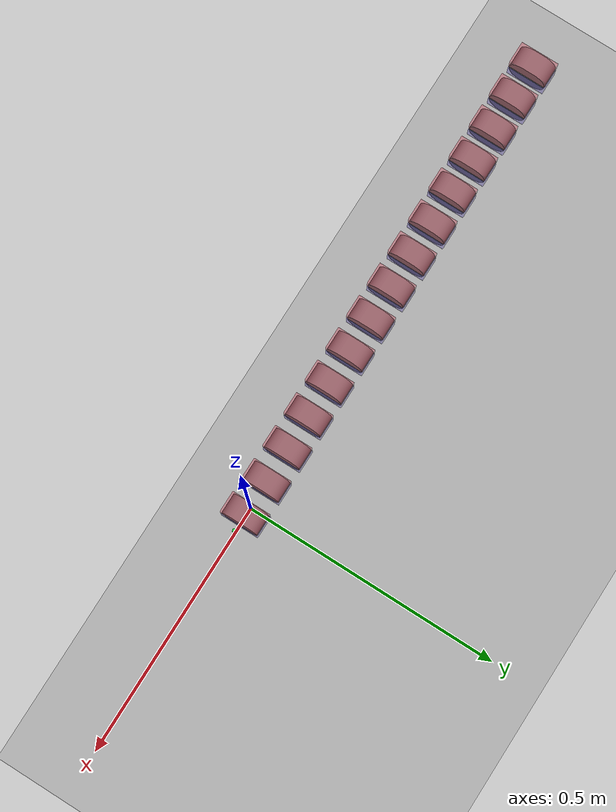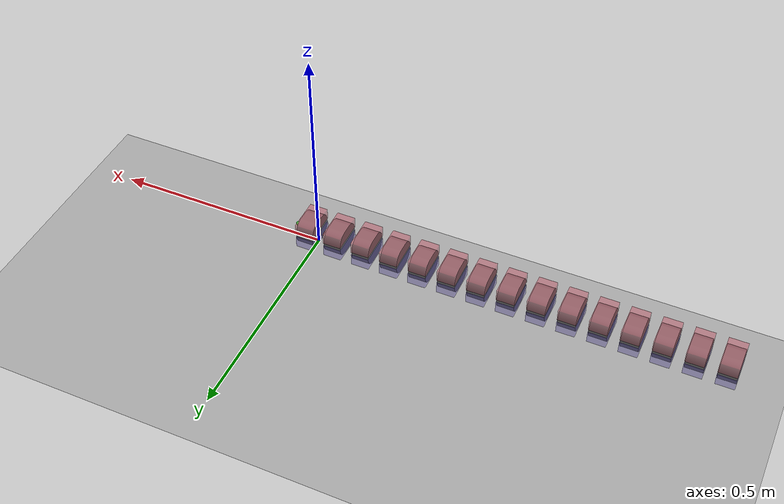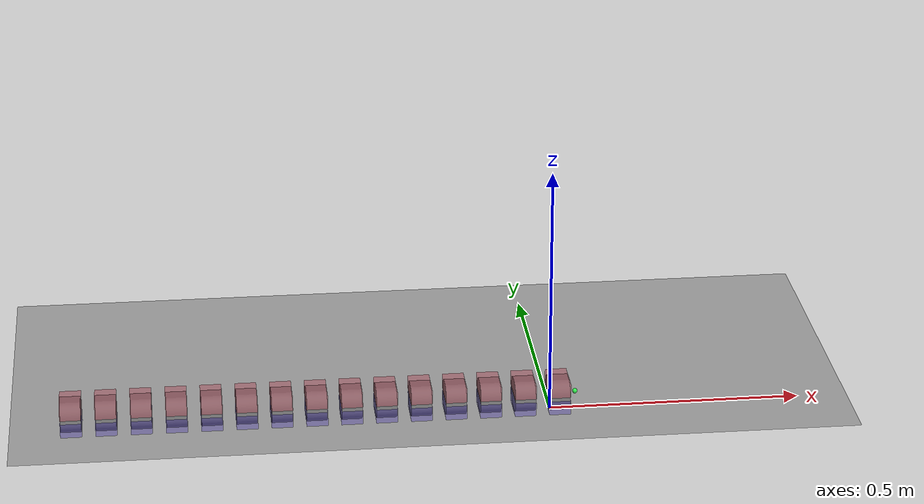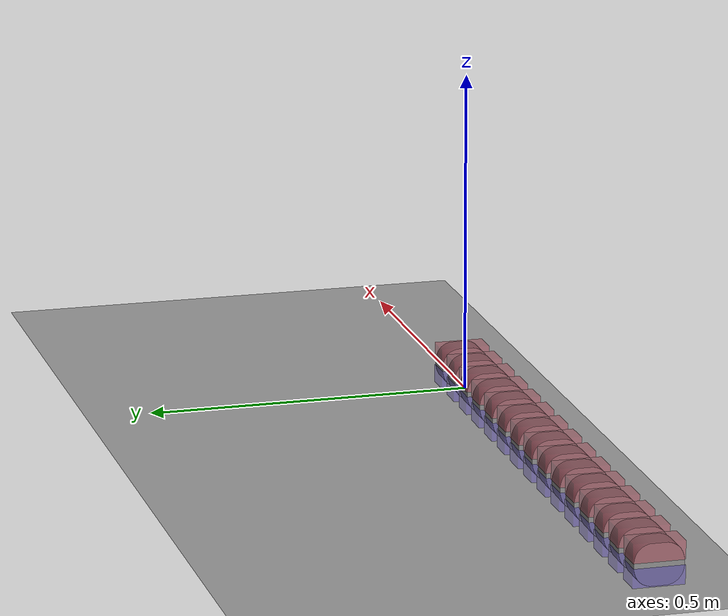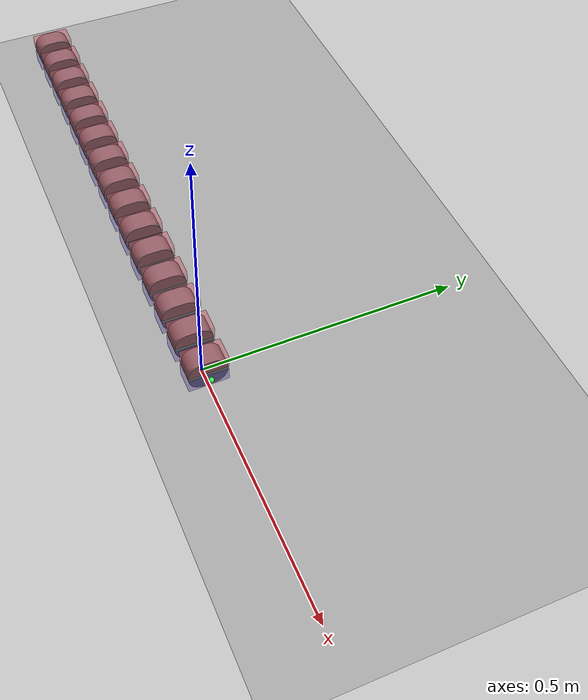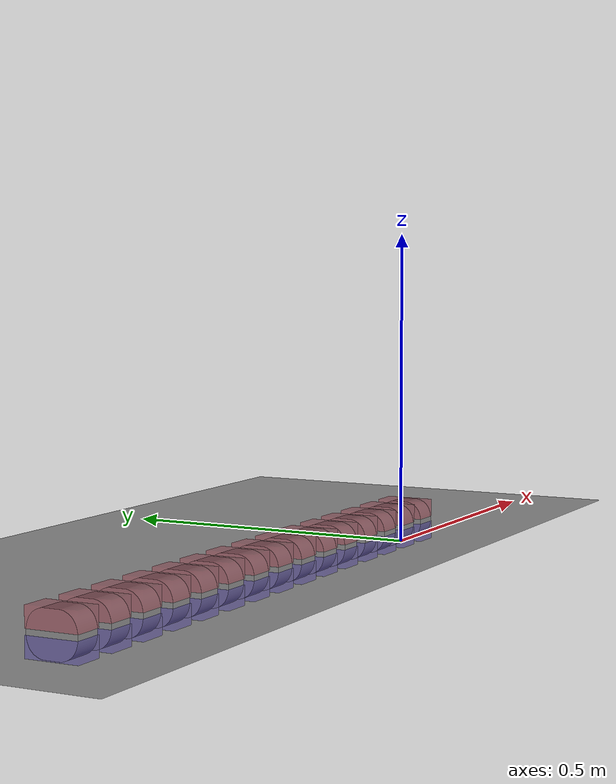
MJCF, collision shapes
<mujoco model="Horcrux v2 n14 with flat plane">
    <include file="horcrux_n14.xml"/>
    <option timestep="0.005"/>

    <asset>
        <texture type="skybox" builtin="gradient" width="512" height="512" rgb1=".4 .6 .8" rgb2="0 0 0"/>
        <texture name="texgeom" type="cube" builtin="flat" mark="cross" width="128" height="128"
                 rgb1="0.6 0.6 0.6" rgb2="0.6 0.6 0.6" markrgb="1 1 1"/>
        <texture name="texplane" type="2d" builtin="checker" rgb1=".55 .55 .55" rgb2=".75 .75 .75"
                 width="512" height="512"/>
        <material name="MatPlane" reflectance="0.0" texture="texplane" texrepeat="1 1" texuniform="true"
                  rgba="1 1 1 1"/>
        <material name="capsule" texture="texgeom" texuniform="true" rgba=".4 .9 .6 1" />
        <material name="ellipsoid" texture="texgeom" texuniform="true" rgba=".4 .6 .9 1" />
        <material name="box" texture="texgeom" texuniform="true" rgba=".4 .9 .9 1" />
        <material name="cylinder" texture="texgeom" texuniform="true" rgba=".8 .6 .8 1" />
        <material name="sphere" texture="texgeom" texuniform="true" rgba=".9 .1 .1 1" />
    </asset>

<worldbody>
    <geom name="floor" type="plane" size="30 30 .5" priority="2" friction="0.65 0.015 0.01" material="MatPlane"/>
</worldbody>

</mujoco>

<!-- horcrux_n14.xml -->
<mujoco model="Horcrux v2 body n14">
    <!-- AUTO-GENERATED by generate_scalable_mjcf.py (n=14 joints). DO NOT EDIT — regenerate instead. Source: resources/horcrux_p.xml -->
    <asset>
        <mesh name="link_collision" file="../resources/assets/link_collision_mesh.STL" />
        <material name="black_medium_gloss_plastic" specular="1.0" shininess="0.099901085" rgba="0.101961 0.101961 0.101961 1.000000" />
        <material name="black_spray_paint" specular="1.0" shininess="0.001136835" rgba="0.058824 0.058824 0.058824 1.000000" />
        <material name="brushed_nickel" specular="1.0" shininess="0.006954886" rgba="1.000000 0.960784 0.890196 1.000000" />
        <material name="color" specular="1.0" shininess="0.005212761999999999" rgba="0.000000 0.368627 0.094118 1.000000" />
        <material name="color-2" specular="1.0" shininess="0.005212761999999999" rgba="1.000000 1.000000 1.000000 1.000000" />
        <material name="color-3" specular="1.0" shininess="0.005212761999999999" rgba="0.250980 0.250980 0.250980 1.000000" />
        <material name="color-4" specular="1.0" shininess="0.005212761999999999" rgba="0.870588 0.709804 0.498039 1.000000" />
        <material name="color-5" specular="1.0" shininess="0.005212761999999999" rgba="0.749020 0.749020 0.749020 1.000000" />
        <material name="color-6" specular="1.0" shininess="0.005212761999999999" rgba="0.470588 0.431373 0.274510 1.000000" />
        <material name="color-7" specular="1.0" shininess="0.005212761999999999" rgba="0.247059 0.247059 0.247059 1.000000" />
        <material name="color-8" specular="1.0" shininess="0.005212761999999999" rgba="0.929412 0.807843 0.764706 1.000000" />
        <material name="color-9" specular="1.0" shininess="0.005212761999999999" rgba="0.960784 0.960784 0.964706 1.000000" />
        <material name="frosted_plastic" specular="1.0" shininess="0.002559057" rgba="0.576471 0.929412 1.000000 1.000000" />
        <material name="frosted_plastic-2" specular="1.0" shininess="0.002559057" rgba="0.576471 0.929412 1.000000 1.000000" />
        <material name="frosted_plastic-3" specular="1.0" shininess="0.002559057" rgba="0.576471 0.929412 1.000000 1.000000" />
        <material name="light_grey_low_gloss_plastic" specular="1.0" shininess="0.001357886" rgba="0.498039 0.498039 0.498039 1.000000" />
        <material name="matte_rubber" specular="1.0" shininess="0.0012430000000000002" rgba="0.094118 0.078431 0.078431 1.000000" />
        <material name="satin_finish_aluminum" specular="1.0" shininess="0.003414631" rgba="0.866667 0.909804 1.000000 1.000000" />
        <material name="satin_finish_aluminum_(Cosmetic_Thread)" specular="1.0" shininess="0.003414631" rgba="0.866667 0.909804 1.000000 1.000000" />
        <mesh file="../resources/assets/head_0.obj" />
        <mesh file="../resources/assets/head_1.obj" />
        <mesh file="../resources/assets/head_2.obj" />
        <mesh file="../resources/assets/head_3.obj" />
        <mesh file="../resources/assets/head_4.obj" />
        <mesh file="../resources/assets/head_5.obj" />
        <mesh file="../resources/assets/head_6.obj" />
        <mesh file="../resources/assets/head_7.obj" />
        <mesh file="../resources/assets/head_8.obj" />
        <mesh file="../resources/assets/head_9.obj" />
        <mesh file="../resources/assets/head_10.obj" />
        <mesh file="../resources/assets/head_11.obj" />
        <mesh file="../resources/assets/head_12.obj" />
        <mesh file="../resources/assets/head_13.obj" />
        <mesh file="../resources/assets/head_14.obj" />
        <mesh file="../resources/assets/head_15.obj" />
        <mesh file="../resources/assets/head_16.obj" />
        <mesh file="../resources/assets/head_17.obj" />
        <mesh file="../resources/assets/head_18.obj" />
        <material name="v-color" specular="1.0" shininess="0.005212761999999999" rgba="0.247059 0.247059 0.247059 1.000000" />
        <material name="v-color-10" specular="1.0" shininess="0.005212761999999999" rgba="0.749020 0.749020 0.749020 1.000000" />
        <material name="v-color-2" specular="1.0" shininess="0.005212761999999999" rgba="0.929412 0.807843 0.764706 1.000000" />
        <material name="v-color-3" specular="1.0" shininess="0.005212761999999999" rgba="0.960784 0.960784 0.964706 1.000000" />
        <material name="v-color-4" specular="1.0" shininess="0.005212761999999999" rgba="0.117647 0.294118 0.031373 1.000000" />
        <material name="v-color-5" specular="1.0" shininess="0.005212761999999999" rgba="0.470588 0.431373 0.274510 1.000000" />
        <material name="v-color-7" specular="1.0" shininess="0.005212761999999999" rgba="1.000000 1.000000 1.000000 1.000000" />
        <material name="v-color-8" specular="1.0" shininess="0.005212761999999999" rgba="0.250980 0.250980 0.250980 1.000000" />
        <material name="v-color-9" specular="1.0" shininess="0.005212761999999999" rgba="0.870588 0.709804 0.498039 1.000000" />
        <material name="glossy_rubber" specular="1.0" shininess="0.005212761999999999" rgba="0.298039 0.298039 0.298039 1.000000" />
        <mesh file="../resources/assets/v-link_0.obj" />
        <mesh file="../resources/assets/v-link_1.obj" />
        <mesh file="../resources/assets/v-link_2.obj" />
        <mesh file="../resources/assets/v-link_3.obj" />
        <mesh file="../resources/assets/v-link_4.obj" />
        <mesh file="../resources/assets/v-link_5.obj" />
        <mesh file="../resources/assets/v-link_6.obj" />
        <mesh file="../resources/assets/v-link_7.obj" />
        <mesh file="../resources/assets/v-link_8.obj" />
        <mesh file="../resources/assets/v-link_9.obj" />
        <mesh file="../resources/assets/v-link_10.obj" />
        <mesh file="../resources/assets/v-link_11.obj" />
        <mesh file="../resources/assets/v-link_12.obj" />
        <mesh file="../resources/assets/v-link_13.obj" />
        <mesh file="../resources/assets/v-link_14.obj" />
        <mesh file="../resources/assets/v-link_15.obj" />
        <mesh file="../resources/assets/v-link_16.obj" />
        <mesh file="../resources/assets/v-link_17.obj" />
        <mesh file="../resources/assets/v-link_18.obj" />
        <material name="black_medium_gloss_plastic.001" specular="1.0" shininess="0.099901085" rgba="0.101961 0.101961 0.101961 1.000000" />
        <material name="black_spray_paint.001" specular="1.0" shininess="0.001136835" rgba="0.058824 0.058824 0.058824 1.000000" />
        <material name="brushed_nickel.001" specular="1.0" shininess="0.006954886" rgba="1.000000 0.960784 0.890196 1.000000" />
        <material name="color-2.001" specular="1.0" shininess="0.005212761999999999" rgba="1.000000 1.000000 1.000000 1.000000" />
        <material name="color-3.001" specular="1.0" shininess="0.005212761999999999" rgba="0.250980 0.250980 0.250980 1.000000" />
        <material name="color-4.001" specular="1.0" shininess="0.005212761999999999" rgba="0.870588 0.709804 0.498039 1.000000" />
        <material name="color-5.001" specular="1.0" shininess="0.005212761999999999" rgba="0.749020 0.749020 0.749020 1.000000" />
        <material name="color-6.001" specular="1.0" shininess="0.005212761999999999" rgba="0.470588 0.431373 0.274510 1.000000" />
        <material name="color-7.001" specular="1.0" shininess="0.005212761999999999" rgba="0.247059 0.247059 0.247059 1.000000" />
        <material name="color-8.001" specular="1.0" shininess="0.005212761999999999" rgba="0.929412 0.807843 0.764706 1.000000" />
        <material name="color-9.001" specular="1.0" shininess="0.005212761999999999" rgba="0.960784 0.960784 0.964706 1.000000" />
        <material name="color.001" specular="1.0" shininess="0.005212761999999999" rgba="0.117647 0.294118 0.031373 1.000000" />
        <material name="frosted_plastic-2.001" specular="1.0" shininess="0.002559057" rgba="0.576471 0.929412 1.000000 1.000000" />
        <material name="frosted_plastic-3.001" specular="1.0" shininess="0.002559057" rgba="0.576471 0.929412 1.000000 1.000000" />
        <material name="frosted_plastic.001" specular="1.0" shininess="0.002559057" rgba="0.576471 0.929412 1.000000 1.000000" />
        <material name="glossy_rubber.001" specular="1.0" shininess="0.005212761999999999" rgba="0.298039 0.298039 0.298039 1.000000" />
        <material name="light_grey_low_gloss_plastic.001" specular="1.0" shininess="0.001357886" rgba="0.498039 0.498039 0.498039 1.000000" />
        <material name="satin_finish_aluminum.001" specular="1.0" shininess="0.003414631" rgba="0.866667 0.909804 1.000000 1.000000" />
        <material name="satin_finish_aluminum_(Cosmetic_Thread).001" specular="1.0" shininess="0.003414631" rgba="0.866667 0.909804 1.000000 1.000000" />
        <mesh file="../resources/assets/h-link_0.obj" />
        <mesh file="../resources/assets/h-link_1.obj" />
        <mesh file="../resources/assets/h-link_2.obj" />
        <mesh file="../resources/assets/h-link_3.obj" />
        <mesh file="../resources/assets/h-link_4.obj" />
        <mesh file="../resources/assets/h-link_5.obj" />
        <mesh file="../resources/assets/h-link_6.obj" />
        <mesh file="../resources/assets/h-link_7.obj" />
        <mesh file="../resources/assets/h-link_8.obj" />
        <mesh file="../resources/assets/h-link_9.obj" />
        <mesh file="../resources/assets/h-link_10.obj" />
        <mesh file="../resources/assets/h-link_11.obj" />
        <mesh file="../resources/assets/h-link_12.obj" />
        <mesh file="../resources/assets/h-link_13.obj" />
        <mesh file="../resources/assets/h-link_14.obj" />
        <mesh file="../resources/assets/h-link_15.obj" />
        <mesh file="../resources/assets/h-link_16.obj" />
        <mesh file="../resources/assets/h-link_17.obj" />
        <mesh file="../resources/assets/h-link_18.obj" />
    </asset>
    <default>
        <motor ctrlrange="-3 3" ctrllimited="true" />
        <default class="joint_defaults">
            <joint type="hinge" pos="0.0685 0 0" limited="true" range="-45 45" damping="0.13" armature="0.01" />
        </default>
        <default class="collision-mesh">
            <geom group="3" type="mesh" mesh="link_collision" mass="0.165" condim="4" rgba="0.5 0.5 0.5 0.1" priority="1" friction="0.7 0.015 0.001" euler="90 90 0" />
        </default>
        <default class="visual">
            <geom group="2" type="mesh" mass="0" contype="0" conaffinity="0" />
        </default>
        <default class="collision">
            <geom group="3" type="mesh" />
        </default>
    </default>
    <visual>
        <map force="0.1" zfar="30" />
        <rgba haze="0.15 0.25 0.35 1" />
        <quality shadowsize="4096" />
        <global offwidth="1280" offheight="1280" />
    </visual>
    <worldbody>
        <body>
            <camera name="ceiling" mode="fixed" fovy="48" pos="-0.5 0 3.5" euler="0 0 0" />
        </body>
        <body name="link1" pos="0 0 0.035" euler="0 0 0">
            <freejoint name="root" />
            <site name="s_tool" pos="0.05 0 0.0" euler="0 0 0" rgba="0.2 0.9 0.3 1" />
            <site name="s_link1_top" type="box" size="0.021 0.038 0.014" pos="0.016 0 0.018" rgba="0.8 0.1 0.2 0.3" />
            <site name="s_link1_bot" type="box" size="0.021 0.038 0.014" pos="0.016 0 -0.018" rgba="0.2 0.1 0.8 0.3" />
            <geom name="collision-link1" class="collision-mesh" />
            <geom mesh="head_0" pos="0 0 -0.03125" euler="0 90 90" material="matte_rubber" class="visual" />
            <geom mesh="head_1" pos="0 0 -0.03125" euler="0 90 90" material="color-9" class="visual" />
            <geom mesh="head_2" pos="0 0 -0.03125" euler="0 90 90" material="color-8" class="visual" />
            <geom mesh="head_3" pos="0 0 -0.03125" euler="0 90 90" material="color-7" class="visual" />
            <geom mesh="head_4" pos="0 0 -0.03125" euler="0 90 90" material="color-6" class="visual" />
            <geom mesh="head_5" pos="0 0 -0.03125" euler="0 90 90" material="color-5" class="visual" />
            <geom mesh="head_6" pos="0 0 -0.03125" euler="0 90 90" material="color-4" class="visual" />
            <geom mesh="head_7" pos="0 0 -0.03125" euler="0 90 90" material="color-3" class="visual" />
            <geom mesh="head_8" pos="0 0 -0.03125" euler="0 90 90" material="color-2" class="visual" />
            <geom mesh="head_9" pos="0 0 -0.03125" euler="0 90 90" material="color" class="visual" />
            <geom mesh="head_10" pos="0 0 -0.03125" euler="0 90 90" material="light_grey_low_gloss_plastic" class="visual" />
            <geom mesh="head_11" pos="0 0 -0.03125" euler="0 90 90" material="frosted_plastic-3" class="visual" />
            <geom mesh="head_12" pos="0 0 -0.03125" euler="0 90 90" material="frosted_plastic-2" class="visual" />
            <geom mesh="head_13" pos="0 0 -0.03125" euler="0 90 90" material="frosted_plastic" class="visual" />
            <geom mesh="head_14" pos="0 0 -0.03125" euler="0 90 90" material="satin_finish_aluminum_(Cosmetic_Thread)" class="visual" />
            <geom mesh="head_15" pos="0 0 -0.03125" euler="0 90 90" material="satin_finish_aluminum" class="visual" />
            <geom mesh="head_16" pos="0 0 -0.03125" euler="0 90 90" material="black_medium_gloss_plastic" class="visual" />
            <geom mesh="head_17" pos="0 0 -0.03125" euler="0 90 90" material="brushed_nickel" class="visual" />
            <geom mesh="head_18" pos="0 0 -0.03125" euler="0 90 90" material="black_spray_paint" class="visual" />
            <body name="link2" pos="-0.0685 0 0" euler="0 0 0">
                <joint class="joint_defaults" name="joint1" axis="0 1 0" />
                <site name="s_link2_top" type="box" size="0.021 0.038 0.014" pos="0.016 0 0.018" rgba="0.8 0.1 0.2 0.3" />
                <site name="s_link2_bot" type="box" size="0.021 0.038 0.014" pos="0.016 0 -0.018" rgba="0.2 0.1 0.8 0.3" />
                <geom name="collision-link2" class="collision-mesh" />
                <geom mesh="h-link_0" pos="0 0 -0.03125" euler="0 90 90" material="glossy_rubber" class="visual" />
                <geom mesh="h-link_1" pos="0 0 -0.03125" euler="0 90 90" material="v-color-10" class="visual" />
                <geom mesh="h-link_2" pos="0 0 -0.03125" euler="0 90 90" material="v-color-9" class="visual" />
                <geom mesh="h-link_3" pos="0 0 -0.03125" euler="0 90 90" material="v-color-8" class="visual" />
                <geom mesh="h-link_4" pos="0 0 -0.03125" euler="0 90 90" material="v-color-7" class="visual" />
                <geom mesh="h-link_5" pos="0 0 -0.03125" euler="0 90 90" material="v-color-5" class="visual" />
                <geom mesh="h-link_6" pos="0 0 -0.03125" euler="0 90 90" material="v-color-4" class="visual" />
                <geom mesh="h-link_7" pos="0 0 -0.03125" euler="0 90 90" material="v-color-3" class="visual" />
                <geom mesh="h-link_8" pos="0 0 -0.03125" euler="0 90 90" material="v-color-2" class="visual" />
                <geom mesh="h-link_9" pos="0 0 -0.03125" euler="0 90 90" material="v-color" class="visual" />
                <geom mesh="h-link_10" pos="0 0 -0.03125" euler="0 90 90" material="light_grey_low_gloss_plastic" class="visual" />
                <geom mesh="h-link_11" pos="0 0 -0.03125" euler="0 90 90" material="frosted_plastic-3" class="visual" />
                <geom mesh="h-link_12" pos="0 0 -0.03125" euler="0 90 90" material="frosted_plastic-2" class="visual" />
                <geom mesh="h-link_13" pos="0 0 -0.03125" euler="0 90 90" material="frosted_plastic" class="visual" />
                <geom mesh="h-link_14" pos="0 0 -0.03125" euler="0 90 90" material="satin_finish_aluminum_(Cosmetic_Thread)" class="visual" />
                <geom mesh="h-link_15" pos="0 0 -0.03125" euler="0 90 90" material="satin_finish_aluminum" class="visual" />
                <geom mesh="h-link_16" pos="0 0 -0.03125" euler="0 90 90" material="black_medium_gloss_plastic" class="visual" />
                <geom mesh="h-link_17" pos="0 0 -0.03125" euler="0 90 90" material="brushed_nickel" class="visual" />
                <geom mesh="h-link_18" pos="0 0 -0.03125" euler="0 90 90" material="black_spray_paint" class="visual" />
                <body name="link3" pos="-0.0685 0 0" euler="0 0 0">
                    <joint class="joint_defaults" name="joint2" axis="0 0 1" />
                    <site name="s_link3_top" type="box" size="0.021 0.038 0.014" pos="0.016 0 0.018" rgba="0.8 0.1 0.2 0.3" />
                    <site name="s_link3_bot" type="box" size="0.021 0.038 0.014" pos="0.016 0 -0.018" rgba="0.2 0.1 0.8 0.3" />
                    <geom name="collision-link3" class="collision-mesh" />
                    <geom mesh="v-link_0" pos="0 0 -0.03125" euler="0 90 90" material="glossy_rubber" class="visual" />
                    <geom mesh="v-link_1" pos="0 0 -0.03125" euler="0 90 90" material="v-color-10" class="visual" />
                    <geom mesh="v-link_2" pos="0 0 -0.03125" euler="0 90 90" material="v-color-9" class="visual" />
                    <geom mesh="v-link_3" pos="0 0 -0.03125" euler="0 90 90" material="v-color-8" class="visual" />
                    <geom mesh="v-link_4" pos="0 0 -0.03125" euler="0 90 90" material="v-color-7" class="visual" />
                    <geom mesh="v-link_5" pos="0 0 -0.03125" euler="0 90 90" material="v-color-5" class="visual" />
                    <geom mesh="v-link_6" pos="0 0 -0.03125" euler="0 90 90" material="v-color-4" class="visual" />
                    <geom mesh="v-link_7" pos="0 0 -0.03125" euler="0 90 90" material="v-color-3" class="visual" />
                    <geom mesh="v-link_8" pos="0 0 -0.03125" euler="0 90 90" material="v-color-2" class="visual" />
                    <geom mesh="v-link_9" pos="0 0 -0.03125" euler="0 90 90" material="v-color" class="visual" />
                    <geom mesh="v-link_10" pos="0 0 -0.03125" euler="0 90 90" material="light_grey_low_gloss_plastic" class="visual" />
                    <geom mesh="v-link_11" pos="0 0 -0.03125" euler="0 90 90" material="frosted_plastic-3" class="visual" />
                    <geom mesh="v-link_12" pos="0 0 -0.03125" euler="0 90 90" material="frosted_plastic-2" class="visual" />
                    <geom mesh="v-link_13" pos="0 0 -0.03125" euler="0 90 90" material="frosted_plastic" class="visual" />
                    <geom mesh="v-link_14" pos="0 0 -0.03125" euler="0 90 90" material="satin_finish_aluminum_(Cosmetic_Thread)" class="visual" />
                    <geom mesh="v-link_15" pos="0 0 -0.03125" euler="0 90 90" material="satin_finish_aluminum" class="visual" />
                    <geom mesh="v-link_16" pos="0 0 -0.03125" euler="0 90 90" material="black_medium_gloss_plastic" class="visual" />
                    <geom mesh="v-link_17" pos="0 0 -0.03125" euler="0 90 90" material="brushed_nickel" class="visual" />
                    <geom mesh="v-link_18" pos="0 0 -0.03125" euler="0 90 90" material="black_spray_paint" class="visual" />
                    <body name="link4" pos="-0.0685 0 0" euler="0 0 0">
                        <joint class="joint_defaults" name="joint3" axis="0 1 0" />
                        <site name="s_link4_top" type="box" size="0.021 0.038 0.014" pos="0.016 0 0.018" rgba="0.8 0.1 0.2 0.3" />
                        <site name="s_link4_bot" type="box" size="0.021 0.038 0.014" pos="0.016 0 -0.018" rgba="0.2 0.1 0.8 0.3" />
                        <geom name="collision-link4" class="collision-mesh" />
                        <geom mesh="h-link_0" pos="0 0 -0.03125" euler="0 90 90" material="glossy_rubber" class="visual" />
                        <geom mesh="h-link_1" pos="0 0 -0.03125" euler="0 90 90" material="v-color-10" class="visual" />
                        <geom mesh="h-link_2" pos="0 0 -0.03125" euler="0 90 90" material="v-color-9" class="visual" />
                        <geom mesh="h-link_3" pos="0 0 -0.03125" euler="0 90 90" material="v-color-8" class="visual" />
                        <geom mesh="h-link_4" pos="0 0 -0.03125" euler="0 90 90" material="v-color-7" class="visual" />
                        <geom mesh="h-link_5" pos="0 0 -0.03125" euler="0 90 90" material="v-color-5" class="visual" />
                        <geom mesh="h-link_6" pos="0 0 -0.03125" euler="0 90 90" material="v-color-4" class="visual" />
                        <geom mesh="h-link_7" pos="0 0 -0.03125" euler="0 90 90" material="v-color-3" class="visual" />
                        <geom mesh="h-link_8" pos="0 0 -0.03125" euler="0 90 90" material="v-color-2" class="visual" />
                        <geom mesh="h-link_9" pos="0 0 -0.03125" euler="0 90 90" material="v-color" class="visual" />
                        <geom mesh="h-link_10" pos="0 0 -0.03125" euler="0 90 90" material="light_grey_low_gloss_plastic" class="visual" />
                        <geom mesh="h-link_11" pos="0 0 -0.03125" euler="0 90 90" material="frosted_plastic-3" class="visual" />
                        <geom mesh="h-link_12" pos="0 0 -0.03125" euler="0 90 90" material="frosted_plastic-2" class="visual" />
                        <geom mesh="h-link_13" pos="0 0 -0.03125" euler="0 90 90" material="frosted_plastic" class="visual" />
                        <geom mesh="h-link_14" pos="0 0 -0.03125" euler="0 90 90" material="satin_finish_aluminum_(Cosmetic_Thread)" class="visual" />
                        <geom mesh="h-link_15" pos="0 0 -0.03125" euler="0 90 90" material="satin_finish_aluminum" class="visual" />
                        <geom mesh="h-link_16" pos="0 0 -0.03125" euler="0 90 90" material="black_medium_gloss_plastic" class="visual" />
                        <geom mesh="h-link_17" pos="0 0 -0.03125" euler="0 90 90" material="brushed_nickel" class="visual" />
                        <geom mesh="h-link_18" pos="0 0 -0.03125" euler="0 90 90" material="black_spray_paint" class="visual" />
                        <body name="link5" pos="-0.0685 0 0" euler="0 0 0">
                            <joint class="joint_defaults" name="joint4" axis="0 0 1" />
                            <site name="s_link5_top" type="box" size="0.021 0.038 0.014" pos="0.016 0 0.018" rgba="0.8 0.1 0.2 0.3" />
                            <site name="s_link5_bot" type="box" size="0.021 0.038 0.014" pos="0.016 0 -0.018" rgba="0.2 0.1 0.8 0.3" />
                            <geom name="collision-link5" class="collision-mesh" />
                            <geom mesh="v-link_0" pos="0 0 -0.03125" euler="0 90 90" material="glossy_rubber" class="visual" />
                            <geom mesh="v-link_1" pos="0 0 -0.03125" euler="0 90 90" material="v-color-10" class="visual" />
                            <geom mesh="v-link_2" pos="0 0 -0.03125" euler="0 90 90" material="v-color-9" class="visual" />
                            <geom mesh="v-link_3" pos="0 0 -0.03125" euler="0 90 90" material="v-color-8" class="visual" />
                            <geom mesh="v-link_4" pos="0 0 -0.03125" euler="0 90 90" material="v-color-7" class="visual" />
                            <geom mesh="v-link_5" pos="0 0 -0.03125" euler="0 90 90" material="v-color-5" class="visual" />
                            <geom mesh="v-link_6" pos="0 0 -0.03125" euler="0 90 90" material="v-color-4" class="visual" />
                            <geom mesh="v-link_7" pos="0 0 -0.03125" euler="0 90 90" material="v-color-3" class="visual" />
                            <geom mesh="v-link_8" pos="0 0 -0.03125" euler="0 90 90" material="v-color-2" class="visual" />
                            <geom mesh="v-link_9" pos="0 0 -0.03125" euler="0 90 90" material="v-color" class="visual" />
                            <geom mesh="v-link_10" pos="0 0 -0.03125" euler="0 90 90" material="light_grey_low_gloss_plastic" class="visual" />
                            <geom mesh="v-link_11" pos="0 0 -0.03125" euler="0 90 90" material="frosted_plastic-3" class="visual" />
                            <geom mesh="v-link_12" pos="0 0 -0.03125" euler="0 90 90" material="frosted_plastic-2" class="visual" />
                            <geom mesh="v-link_13" pos="0 0 -0.03125" euler="0 90 90" material="frosted_plastic" class="visual" />
                            <geom mesh="v-link_14" pos="0 0 -0.03125" euler="0 90 90" material="satin_finish_aluminum_(Cosmetic_Thread)" class="visual" />
                            <geom mesh="v-link_15" pos="0 0 -0.03125" euler="0 90 90" material="satin_finish_aluminum" class="visual" />
                            <geom mesh="v-link_16" pos="0 0 -0.03125" euler="0 90 90" material="black_medium_gloss_plastic" class="visual" />
                            <geom mesh="v-link_17" pos="0 0 -0.03125" euler="0 90 90" material="brushed_nickel" class="visual" />
                            <geom mesh="v-link_18" pos="0 0 -0.03125" euler="0 90 90" material="black_spray_paint" class="visual" />
                            <body name="link6" pos="-0.0685 0 0" euler="0 0 0">
                                <joint class="joint_defaults" name="joint5" axis="0 1 0" />
                                <site name="s_link6_top" type="box" size="0.021 0.038 0.014" pos="0.016 0 0.018" rgba="0.8 0.1 0.2 0.3" />
                                <site name="s_link6_bot" type="box" size="0.021 0.038 0.014" pos="0.016 0 -0.018" rgba="0.2 0.1 0.8 0.3" />
                                <geom name="collision-link6" class="collision-mesh" />
                                <geom mesh="h-link_0" pos="0 0 -0.03125" euler="0 90 90" material="glossy_rubber" class="visual" />
                                <geom mesh="h-link_1" pos="0 0 -0.03125" euler="0 90 90" material="v-color-10" class="visual" />
                                <geom mesh="h-link_2" pos="0 0 -0.03125" euler="0 90 90" material="v-color-9" class="visual" />
                                <geom mesh="h-link_3" pos="0 0 -0.03125" euler="0 90 90" material="v-color-8" class="visual" />
                                <geom mesh="h-link_4" pos="0 0 -0.03125" euler="0 90 90" material="v-color-7" class="visual" />
                                <geom mesh="h-link_5" pos="0 0 -0.03125" euler="0 90 90" material="v-color-5" class="visual" />
                                <geom mesh="h-link_6" pos="0 0 -0.03125" euler="0 90 90" material="v-color-4" class="visual" />
                                <geom mesh="h-link_7" pos="0 0 -0.03125" euler="0 90 90" material="v-color-3" class="visual" />
                                <geom mesh="h-link_8" pos="0 0 -0.03125" euler="0 90 90" material="v-color-2" class="visual" />
                                <geom mesh="h-link_9" pos="0 0 -0.03125" euler="0 90 90" material="v-color" class="visual" />
                                <geom mesh="h-link_10" pos="0 0 -0.03125" euler="0 90 90" material="light_grey_low_gloss_plastic" class="visual" />
                                <geom mesh="h-link_11" pos="0 0 -0.03125" euler="0 90 90" material="frosted_plastic-3" class="visual" />
                                <geom mesh="h-link_12" pos="0 0 -0.03125" euler="0 90 90" material="frosted_plastic-2" class="visual" />
                                <geom mesh="h-link_13" pos="0 0 -0.03125" euler="0 90 90" material="frosted_plastic" class="visual" />
                                <geom mesh="h-link_14" pos="0 0 -0.03125" euler="0 90 90" material="satin_finish_aluminum_(Cosmetic_Thread)" class="visual" />
                                <geom mesh="h-link_15" pos="0 0 -0.03125" euler="0 90 90" material="satin_finish_aluminum" class="visual" />
                                <geom mesh="h-link_16" pos="0 0 -0.03125" euler="0 90 90" material="black_medium_gloss_plastic" class="visual" />
                                <geom mesh="h-link_17" pos="0 0 -0.03125" euler="0 90 90" material="brushed_nickel" class="visual" />
                                <geom mesh="h-link_18" pos="0 0 -0.03125" euler="0 90 90" material="black_spray_paint" class="visual" />
                                <body name="link7" pos="-0.0685 0 0" euler="0 0 0">
                                    <joint class="joint_defaults" name="joint6" axis="0 0 1" />
                                    <site name="s_link7_top" type="box" size="0.021 0.038 0.014" pos="0.016 0 0.018" rgba="0.8 0.1 0.2 0.3" />
                                    <site name="s_link7_bot" type="box" size="0.021 0.038 0.014" pos="0.016 0 -0.018" rgba="0.2 0.1 0.8 0.3" />
                                    <geom name="collision-link7" class="collision-mesh" />
                                    <geom mesh="v-link_0" pos="0 0 -0.03125" euler="0 90 90" material="glossy_rubber" class="visual" />
                                    <geom mesh="v-link_1" pos="0 0 -0.03125" euler="0 90 90" material="v-color-10" class="visual" />
                                    <geom mesh="v-link_2" pos="0 0 -0.03125" euler="0 90 90" material="v-color-9" class="visual" />
                                    <geom mesh="v-link_3" pos="0 0 -0.03125" euler="0 90 90" material="v-color-8" class="visual" />
                                    <geom mesh="v-link_4" pos="0 0 -0.03125" euler="0 90 90" material="v-color-7" class="visual" />
                                    <geom mesh="v-link_5" pos="0 0 -0.03125" euler="0 90 90" material="v-color-5" class="visual" />
                                    <geom mesh="v-link_6" pos="0 0 -0.03125" euler="0 90 90" material="v-color-4" class="visual" />
                                    <geom mesh="v-link_7" pos="0 0 -0.03125" euler="0 90 90" material="v-color-3" class="visual" />
                                    <geom mesh="v-link_8" pos="0 0 -0.03125" euler="0 90 90" material="v-color-2" class="visual" />
                                    <geom mesh="v-link_9" pos="0 0 -0.03125" euler="0 90 90" material="v-color" class="visual" />
                                    <geom mesh="v-link_10" pos="0 0 -0.03125" euler="0 90 90" material="light_grey_low_gloss_plastic" class="visual" />
                                    <geom mesh="v-link_11" pos="0 0 -0.03125" euler="0 90 90" material="frosted_plastic-3" class="visual" />
                                    <geom mesh="v-link_12" pos="0 0 -0.03125" euler="0 90 90" material="frosted_plastic-2" class="visual" />
                                    <geom mesh="v-link_13" pos="0 0 -0.03125" euler="0 90 90" material="frosted_plastic" class="visual" />
                                    <geom mesh="v-link_14" pos="0 0 -0.03125" euler="0 90 90" material="satin_finish_aluminum_(Cosmetic_Thread)" class="visual" />
                                    <geom mesh="v-link_15" pos="0 0 -0.03125" euler="0 90 90" material="satin_finish_aluminum" class="visual" />
                                    <geom mesh="v-link_16" pos="0 0 -0.03125" euler="0 90 90" material="black_medium_gloss_plastic" class="visual" />
                                    <geom mesh="v-link_17" pos="0 0 -0.03125" euler="0 90 90" material="brushed_nickel" class="visual" />
                                    <geom mesh="v-link_18" pos="0 0 -0.03125" euler="0 90 90" material="black_spray_paint" class="visual" />
                                    <body name="link8" pos="-0.0685 0 0" euler="0 0 0">
                                        <joint class="joint_defaults" name="joint7" axis="0 1 0" />
                                        <site name="s_link8_top" type="box" size="0.021 0.038 0.014" pos="0.016 0 0.018" rgba="0.8 0.1 0.2 0.3" />
                                        <site name="s_link8_bot" type="box" size="0.021 0.038 0.014" pos="0.016 0 -0.018" rgba="0.2 0.1 0.8 0.3" />
                                        <geom name="collision-link8" class="collision-mesh" />
                                        <geom mesh="h-link_0" pos="0 0 -0.03125" euler="0 90 90" material="glossy_rubber" class="visual" />
                                        <geom mesh="h-link_1" pos="0 0 -0.03125" euler="0 90 90" material="v-color-10" class="visual" />
                                        <geom mesh="h-link_2" pos="0 0 -0.03125" euler="0 90 90" material="v-color-9" class="visual" />
                                        <geom mesh="h-link_3" pos="0 0 -0.03125" euler="0 90 90" material="v-color-8" class="visual" />
                                        <geom mesh="h-link_4" pos="0 0 -0.03125" euler="0 90 90" material="v-color-7" class="visual" />
                                        <geom mesh="h-link_5" pos="0 0 -0.03125" euler="0 90 90" material="v-color-5" class="visual" />
                                        <geom mesh="h-link_6" pos="0 0 -0.03125" euler="0 90 90" material="v-color-4" class="visual" />
                                        <geom mesh="h-link_7" pos="0 0 -0.03125" euler="0 90 90" material="v-color-3" class="visual" />
                                        <geom mesh="h-link_8" pos="0 0 -0.03125" euler="0 90 90" material="v-color-2" class="visual" />
                                        <geom mesh="h-link_9" pos="0 0 -0.03125" euler="0 90 90" material="v-color" class="visual" />
                                        <geom mesh="h-link_10" pos="0 0 -0.03125" euler="0 90 90" material="light_grey_low_gloss_plastic" class="visual" />
                                        <geom mesh="h-link_11" pos="0 0 -0.03125" euler="0 90 90" material="frosted_plastic-3" class="visual" />
                                        <geom mesh="h-link_12" pos="0 0 -0.03125" euler="0 90 90" material="frosted_plastic-2" class="visual" />
                                        <geom mesh="h-link_13" pos="0 0 -0.03125" euler="0 90 90" material="frosted_plastic" class="visual" />
                                        <geom mesh="h-link_14" pos="0 0 -0.03125" euler="0 90 90" material="satin_finish_aluminum_(Cosmetic_Thread)" class="visual" />
                                        <geom mesh="h-link_15" pos="0 0 -0.03125" euler="0 90 90" material="satin_finish_aluminum" class="visual" />
                                        <geom mesh="h-link_16" pos="0 0 -0.03125" euler="0 90 90" material="black_medium_gloss_plastic" class="visual" />
                                        <geom mesh="h-link_17" pos="0 0 -0.03125" euler="0 90 90" material="brushed_nickel" class="visual" />
                                        <geom mesh="h-link_18" pos="0 0 -0.03125" euler="0 90 90" material="black_spray_paint" class="visual" />
                                        <body name="link9" pos="-0.0685 0 0" euler="0 0 0">
                                            <joint class="joint_defaults" name="joint8" axis="0 0 1" />
                                            <site name="s_link9_top" type="box" size="0.021 0.038 0.014" pos="0.016 0 0.018" rgba="0.8 0.1 0.2 0.3" />
                                            <site name="s_link9_bot" type="box" size="0.021 0.038 0.014" pos="0.016 0 -0.018" rgba="0.2 0.1 0.8 0.3" />
                                            <geom name="collision-link9" class="collision-mesh" />
                                            <geom mesh="v-link_0" pos="0 0 -0.03125" euler="0 90 90" material="glossy_rubber" class="visual" />
                                            <geom mesh="v-link_1" pos="0 0 -0.03125" euler="0 90 90" material="v-color-10" class="visual" />
                                            <geom mesh="v-link_2" pos="0 0 -0.03125" euler="0 90 90" material="v-color-9" class="visual" />
                                            <geom mesh="v-link_3" pos="0 0 -0.03125" euler="0 90 90" material="v-color-8" class="visual" />
                                            <geom mesh="v-link_4" pos="0 0 -0.03125" euler="0 90 90" material="v-color-7" class="visual" />
                                            <geom mesh="v-link_5" pos="0 0 -0.03125" euler="0 90 90" material="v-color-5" class="visual" />
                                            <geom mesh="v-link_6" pos="0 0 -0.03125" euler="0 90 90" material="v-color-4" class="visual" />
                                            <geom mesh="v-link_7" pos="0 0 -0.03125" euler="0 90 90" material="v-color-3" class="visual" />
                                            <geom mesh="v-link_8" pos="0 0 -0.03125" euler="0 90 90" material="v-color-2" class="visual" />
                                            <geom mesh="v-link_9" pos="0 0 -0.03125" euler="0 90 90" material="v-color" class="visual" />
                                            <geom mesh="v-link_10" pos="0 0 -0.03125" euler="0 90 90" material="light_grey_low_gloss_plastic" class="visual" />
                                            <geom mesh="v-link_11" pos="0 0 -0.03125" euler="0 90 90" material="frosted_plastic-3" class="visual" />
                                            <geom mesh="v-link_12" pos="0 0 -0.03125" euler="0 90 90" material="frosted_plastic-2" class="visual" />
                                            <geom mesh="v-link_13" pos="0 0 -0.03125" euler="0 90 90" material="frosted_plastic" class="visual" />
                                            <geom mesh="v-link_14" pos="0 0 -0.03125" euler="0 90 90" material="satin_finish_aluminum_(Cosmetic_Thread)" class="visual" />
                                            <geom mesh="v-link_15" pos="0 0 -0.03125" euler="0 90 90" material="satin_finish_aluminum" class="visual" />
                                            <geom mesh="v-link_16" pos="0 0 -0.03125" euler="0 90 90" material="black_medium_gloss_plastic" class="visual" />
                                            <geom mesh="v-link_17" pos="0 0 -0.03125" euler="0 90 90" material="brushed_nickel" class="visual" />
                                            <geom mesh="v-link_18" pos="0 0 -0.03125" euler="0 90 90" material="black_spray_paint" class="visual" />
                                            <body name="link10" pos="-0.0685 0 0" euler="0 0 0">
                                                <joint class="joint_defaults" name="joint9" axis="0 1 0" />
                                                <site name="s_link10_top" type="box" size="0.021 0.038 0.014" pos="0.016 0 0.018" rgba="0.8 0.1 0.2 0.3" />
                                                <site name="s_link10_bot" type="box" size="0.021 0.038 0.014" pos="0.016 0 -0.018" rgba="0.2 0.1 0.8 0.3" />
                                                <geom name="collision-link10" class="collision-mesh" />
                                                <geom mesh="h-link_0" pos="0 0 -0.03125" euler="0 90 90" material="glossy_rubber" class="visual" />
                                                <geom mesh="h-link_1" pos="0 0 -0.03125" euler="0 90 90" material="v-color-10" class="visual" />
                                                <geom mesh="h-link_2" pos="0 0 -0.03125" euler="0 90 90" material="v-color-9" class="visual" />
                                                <geom mesh="h-link_3" pos="0 0 -0.03125" euler="0 90 90" material="v-color-8" class="visual" />
                                                <geom mesh="h-link_4" pos="0 0 -0.03125" euler="0 90 90" material="v-color-7" class="visual" />
                                                <geom mesh="h-link_5" pos="0 0 -0.03125" euler="0 90 90" material="v-color-5" class="visual" />
                                                <geom mesh="h-link_6" pos="0 0 -0.03125" euler="0 90 90" material="v-color-4" class="visual" />
                                                <geom mesh="h-link_7" pos="0 0 -0.03125" euler="0 90 90" material="v-color-3" class="visual" />
                                                <geom mesh="h-link_8" pos="0 0 -0.03125" euler="0 90 90" material="v-color-2" class="visual" />
                                                <geom mesh="h-link_9" pos="0 0 -0.03125" euler="0 90 90" material="v-color" class="visual" />
                                                <geom mesh="h-link_10" pos="0 0 -0.03125" euler="0 90 90" material="light_grey_low_gloss_plastic" class="visual" />
                                                <geom mesh="h-link_11" pos="0 0 -0.03125" euler="0 90 90" material="frosted_plastic-3" class="visual" />
                                                <geom mesh="h-link_12" pos="0 0 -0.03125" euler="0 90 90" material="frosted_plastic-2" class="visual" />
                                                <geom mesh="h-link_13" pos="0 0 -0.03125" euler="0 90 90" material="frosted_plastic" class="visual" />
                                                <geom mesh="h-link_14" pos="0 0 -0.03125" euler="0 90 90" material="satin_finish_aluminum_(Cosmetic_Thread)" class="visual" />
                                                <geom mesh="h-link_15" pos="0 0 -0.03125" euler="0 90 90" material="satin_finish_aluminum" class="visual" />
                                                <geom mesh="h-link_16" pos="0 0 -0.03125" euler="0 90 90" material="black_medium_gloss_plastic" class="visual" />
                                                <geom mesh="h-link_17" pos="0 0 -0.03125" euler="0 90 90" material="brushed_nickel" class="visual" />
                                                <geom mesh="h-link_18" pos="0 0 -0.03125" euler="0 90 90" material="black_spray_paint" class="visual" />
                                                <body name="link11" pos="-0.0685 0 0" euler="0 0 0">
                                                    <joint class="joint_defaults" name="joint10" axis="0 0 1" />
                                                    <site name="s_link11_top" type="box" size="0.021 0.038 0.014" pos="0.016 0 0.018" rgba="0.8 0.1 0.2 0.3" />
                                                    <site name="s_link11_bot" type="box" size="0.021 0.038 0.014" pos="0.016 0 -0.018" rgba="0.2 0.1 0.8 0.3" />
                                                    <geom name="collision-link11" class="collision-mesh" />
                                                    <geom mesh="v-link_0" pos="0 0 -0.03125" euler="0 90 90" material="glossy_rubber" class="visual" />
                                                    <geom mesh="v-link_1" pos="0 0 -0.03125" euler="0 90 90" material="v-color-10" class="visual" />
                                                    <geom mesh="v-link_2" pos="0 0 -0.03125" euler="0 90 90" material="v-color-9" class="visual" />
                                                    <geom mesh="v-link_3" pos="0 0 -0.03125" euler="0 90 90" material="v-color-8" class="visual" />
                                                    <geom mesh="v-link_4" pos="0 0 -0.03125" euler="0 90 90" material="v-color-7" class="visual" />
                                                    <geom mesh="v-link_5" pos="0 0 -0.03125" euler="0 90 90" material="v-color-5" class="visual" />
                                                    <geom mesh="v-link_6" pos="0 0 -0.03125" euler="0 90 90" material="v-color-4" class="visual" />
                                                    <geom mesh="v-link_7" pos="0 0 -0.03125" euler="0 90 90" material="v-color-3" class="visual" />
                                                    <geom mesh="v-link_8" pos="0 0 -0.03125" euler="0 90 90" material="v-color-2" class="visual" />
                                                    <geom mesh="v-link_9" pos="0 0 -0.03125" euler="0 90 90" material="v-color" class="visual" />
                                                    <geom mesh="v-link_10" pos="0 0 -0.03125" euler="0 90 90" material="light_grey_low_gloss_plastic" class="visual" />
                                                    <geom mesh="v-link_11" pos="0 0 -0.03125" euler="0 90 90" material="frosted_plastic-3" class="visual" />
                                                    <geom mesh="v-link_12" pos="0 0 -0.03125" euler="0 90 90" material="frosted_plastic-2" class="visual" />
                                                    <geom mesh="v-link_13" pos="0 0 -0.03125" euler="0 90 90" material="frosted_plastic" class="visual" />
                                                    <geom mesh="v-link_14" pos="0 0 -0.03125" euler="0 90 90" material="satin_finish_aluminum_(Cosmetic_Thread)" class="visual" />
                                                    <geom mesh="v-link_15" pos="0 0 -0.03125" euler="0 90 90" material="satin_finish_aluminum" class="visual" />
                                                    <geom mesh="v-link_16" pos="0 0 -0.03125" euler="0 90 90" material="black_medium_gloss_plastic" class="visual" />
                                                    <geom mesh="v-link_17" pos="0 0 -0.03125" euler="0 90 90" material="brushed_nickel" class="visual" />
                                                    <geom mesh="v-link_18" pos="0 0 -0.03125" euler="0 90 90" material="black_spray_paint" class="visual" />
                                                    <body name="link12" pos="-0.0685 0 0" euler="0 0 0">
                                                        <joint class="joint_defaults" name="joint11" axis="0 1 0" />
                                                        <site name="s_link12_top" type="box" size="0.021 0.038 0.014" pos="0.016 0 0.018" rgba="0.8 0.1 0.2 0.3" />
                                                        <site name="s_link12_bot" type="box" size="0.021 0.038 0.014" pos="0.016 0 -0.018" rgba="0.2 0.1 0.8 0.3" />
                                                        <geom name="collision-link12" class="collision-mesh" />
                                                        <geom mesh="h-link_0" pos="0 0 -0.03125" euler="0 90 90" material="glossy_rubber" class="visual" />
                                                        <geom mesh="h-link_1" pos="0 0 -0.03125" euler="0 90 90" material="v-color-10" class="visual" />
                                                        <geom mesh="h-link_2" pos="0 0 -0.03125" euler="0 90 90" material="v-color-9" class="visual" />
                                                        <geom mesh="h-link_3" pos="0 0 -0.03125" euler="0 90 90" material="v-color-8" class="visual" />
                                                        <geom mesh="h-link_4" pos="0 0 -0.03125" euler="0 90 90" material="v-color-7" class="visual" />
                                                        <geom mesh="h-link_5" pos="0 0 -0.03125" euler="0 90 90" material="v-color-5" class="visual" />
                                                        <geom mesh="h-link_6" pos="0 0 -0.03125" euler="0 90 90" material="v-color-4" class="visual" />
                                                        <geom mesh="h-link_7" pos="0 0 -0.03125" euler="0 90 90" material="v-color-3" class="visual" />
                                                        <geom mesh="h-link_8" pos="0 0 -0.03125" euler="0 90 90" material="v-color-2" class="visual" />
                                                        <geom mesh="h-link_9" pos="0 0 -0.03125" euler="0 90 90" material="v-color" class="visual" />
                                                        <geom mesh="h-link_10" pos="0 0 -0.03125" euler="0 90 90" material="light_grey_low_gloss_plastic" class="visual" />
                                                        <geom mesh="h-link_11" pos="0 0 -0.03125" euler="0 90 90" material="frosted_plastic-3" class="visual" />
                                                        <geom mesh="h-link_12" pos="0 0 -0.03125" euler="0 90 90" material="frosted_plastic-2" class="visual" />
                                                        <geom mesh="h-link_13" pos="0 0 -0.03125" euler="0 90 90" material="frosted_plastic" class="visual" />
                                                        <geom mesh="h-link_14" pos="0 0 -0.03125" euler="0 90 90" material="satin_finish_aluminum_(Cosmetic_Thread)" class="visual" />
                                                        <geom mesh="h-link_15" pos="0 0 -0.03125" euler="0 90 90" material="satin_finish_aluminum" class="visual" />
                                                        <geom mesh="h-link_16" pos="0 0 -0.03125" euler="0 90 90" material="black_medium_gloss_plastic" class="visual" />
                                                        <geom mesh="h-link_17" pos="0 0 -0.03125" euler="0 90 90" material="brushed_nickel" class="visual" />
                                                        <geom mesh="h-link_18" pos="0 0 -0.03125" euler="0 90 90" material="black_spray_paint" class="visual" />
                                                        <body name="link13" pos="-0.0685 0 0" euler="0 0 0">
                                                            <joint class="joint_defaults" name="joint12" axis="0 0 1" />
                                                            <site name="s_link13_top" type="box" size="0.021 0.038 0.014" pos="0.016 0 0.018" rgba="0.8 0.1 0.2 0.3" />
                                                            <site name="s_link13_bot" type="box" size="0.021 0.038 0.014" pos="0.016 0 -0.018" rgba="0.2 0.1 0.8 0.3" />
                                                            <geom name="collision-link13" class="collision-mesh" />
                                                            <geom mesh="v-link_0" pos="0 0 -0.03125" euler="0 90 90" material="glossy_rubber" class="visual" />
                                                            <geom mesh="v-link_1" pos="0 0 -0.03125" euler="0 90 90" material="v-color-10" class="visual" />
                                                            <geom mesh="v-link_2" pos="0 0 -0.03125" euler="0 90 90" material="v-color-9" class="visual" />
                                                            <geom mesh="v-link_3" pos="0 0 -0.03125" euler="0 90 90" material="v-color-8" class="visual" />
                                                            <geom mesh="v-link_4" pos="0 0 -0.03125" euler="0 90 90" material="v-color-7" class="visual" />
                                                            <geom mesh="v-link_5" pos="0 0 -0.03125" euler="0 90 90" material="v-color-5" class="visual" />
                                                            <geom mesh="v-link_6" pos="0 0 -0.03125" euler="0 90 90" material="v-color-4" class="visual" />
                                                            <geom mesh="v-link_7" pos="0 0 -0.03125" euler="0 90 90" material="v-color-3" class="visual" />
                                                            <geom mesh="v-link_8" pos="0 0 -0.03125" euler="0 90 90" material="v-color-2" class="visual" />
                                                            <geom mesh="v-link_9" pos="0 0 -0.03125" euler="0 90 90" material="v-color" class="visual" />
                                                            <geom mesh="v-link_10" pos="0 0 -0.03125" euler="0 90 90" material="light_grey_low_gloss_plastic" class="visual" />
                                                            <geom mesh="v-link_11" pos="0 0 -0.03125" euler="0 90 90" material="frosted_plastic-3" class="visual" />
                                                            <geom mesh="v-link_12" pos="0 0 -0.03125" euler="0 90 90" material="frosted_plastic-2" class="visual" />
                                                            <geom mesh="v-link_13" pos="0 0 -0.03125" euler="0 90 90" material="frosted_plastic" class="visual" />
                                                            <geom mesh="v-link_14" pos="0 0 -0.03125" euler="0 90 90" material="satin_finish_aluminum_(Cosmetic_Thread)" class="visual" />
                                                            <geom mesh="v-link_15" pos="0 0 -0.03125" euler="0 90 90" material="satin_finish_aluminum" class="visual" />
                                                            <geom mesh="v-link_16" pos="0 0 -0.03125" euler="0 90 90" material="black_medium_gloss_plastic" class="visual" />
                                                            <geom mesh="v-link_17" pos="0 0 -0.03125" euler="0 90 90" material="brushed_nickel" class="visual" />
                                                            <geom mesh="v-link_18" pos="0 0 -0.03125" euler="0 90 90" material="black_spray_paint" class="visual" />
                                                            <body name="link14" pos="-0.0685 0 0" euler="0 0 0">
                                                                <joint class="joint_defaults" name="joint13" axis="0 1 0" />
                                                                <site name="s_link14_top" type="box" size="0.021 0.038 0.014" pos="0.016 0 0.018" rgba="0.8 0.1 0.2 0.3" />
                                                                <site name="s_link14_bot" type="box" size="0.021 0.038 0.014" pos="0.016 0 -0.018" rgba="0.2 0.1 0.8 0.3" />
                                                                <geom name="collision-link14" class="collision-mesh" />
                                                                <geom mesh="h-link_0" pos="0 0 -0.03125" euler="0 90 90" material="glossy_rubber" class="visual" />
                                                                <geom mesh="h-link_1" pos="0 0 -0.03125" euler="0 90 90" material="v-color-10" class="visual" />
                                                                <geom mesh="h-link_2" pos="0 0 -0.03125" euler="0 90 90" material="v-color-9" class="visual" />
                                                                <geom mesh="h-link_3" pos="0 0 -0.03125" euler="0 90 90" material="v-color-8" class="visual" />
                                                                <geom mesh="h-link_4" pos="0 0 -0.03125" euler="0 90 90" material="v-color-7" class="visual" />
                                                                <geom mesh="h-link_5" pos="0 0 -0.03125" euler="0 90 90" material="v-color-5" class="visual" />
                                                                <geom mesh="h-link_6" pos="0 0 -0.03125" euler="0 90 90" material="v-color-4" class="visual" />
                                                                <geom mesh="h-link_7" pos="0 0 -0.03125" euler="0 90 90" material="v-color-3" class="visual" />
                                                                <geom mesh="h-link_8" pos="0 0 -0.03125" euler="0 90 90" material="v-color-2" class="visual" />
                                                                <geom mesh="h-link_9" pos="0 0 -0.03125" euler="0 90 90" material="v-color" class="visual" />
                                                                <geom mesh="h-link_10" pos="0 0 -0.03125" euler="0 90 90" material="light_grey_low_gloss_plastic" class="visual" />
                                                                <geom mesh="h-link_11" pos="0 0 -0.03125" euler="0 90 90" material="frosted_plastic-3" class="visual" />
                                                                <geom mesh="h-link_12" pos="0 0 -0.03125" euler="0 90 90" material="frosted_plastic-2" class="visual" />
                                                                <geom mesh="h-link_13" pos="0 0 -0.03125" euler="0 90 90" material="frosted_plastic" class="visual" />
                                                                <geom mesh="h-link_14" pos="0 0 -0.03125" euler="0 90 90" material="satin_finish_aluminum_(Cosmetic_Thread)" class="visual" />
                                                                <geom mesh="h-link_15" pos="0 0 -0.03125" euler="0 90 90" material="satin_finish_aluminum" class="visual" />
                                                                <geom mesh="h-link_16" pos="0 0 -0.03125" euler="0 90 90" material="black_medium_gloss_plastic" class="visual" />
                                                                <geom mesh="h-link_17" pos="0 0 -0.03125" euler="0 90 90" material="brushed_nickel" class="visual" />
                                                                <geom mesh="h-link_18" pos="0 0 -0.03125" euler="0 90 90" material="black_spray_paint" class="visual" />
                                                                <body name="link15" pos="-0.0685 0 0" euler="0 0 0">
                                                                    <joint class="joint_defaults" name="joint14" axis="0 0 1" />
                                                                    <site name="s_link15_top" type="box" size="0.021 0.038 0.014" pos="0.016 0 0.018" rgba="0.8 0.1 0.2 0.3" />
                                                                    <site name="s_link15_bot" type="box" size="0.021 0.038 0.014" pos="0.016 0 -0.018" rgba="0.2 0.1 0.8 0.3" />
                                                                    <geom name="collision-link15" class="collision-mesh" />
                                                                    <geom mesh="v-link_0" pos="0 0 -0.03125" euler="0 90 90" material="glossy_rubber" class="visual" />
                                                                    <geom mesh="v-link_1" pos="0 0 -0.03125" euler="0 90 90" material="v-color-10" class="visual" />
                                                                    <geom mesh="v-link_2" pos="0 0 -0.03125" euler="0 90 90" material="v-color-9" class="visual" />
                                                                    <geom mesh="v-link_3" pos="0 0 -0.03125" euler="0 90 90" material="v-color-8" class="visual" />
                                                                    <geom mesh="v-link_4" pos="0 0 -0.03125" euler="0 90 90" material="v-color-7" class="visual" />
                                                                    <geom mesh="v-link_5" pos="0 0 -0.03125" euler="0 90 90" material="v-color-5" class="visual" />
                                                                    <geom mesh="v-link_6" pos="0 0 -0.03125" euler="0 90 90" material="v-color-4" class="visual" />
                                                                    <geom mesh="v-link_7" pos="0 0 -0.03125" euler="0 90 90" material="v-color-3" class="visual" />
                                                                    <geom mesh="v-link_8" pos="0 0 -0.03125" euler="0 90 90" material="v-color-2" class="visual" />
                                                                    <geom mesh="v-link_9" pos="0 0 -0.03125" euler="0 90 90" material="v-color" class="visual" />
                                                                    <geom mesh="v-link_10" pos="0 0 -0.03125" euler="0 90 90" material="light_grey_low_gloss_plastic" class="visual" />
                                                                    <geom mesh="v-link_11" pos="0 0 -0.03125" euler="0 90 90" material="frosted_plastic-3" class="visual" />
                                                                    <geom mesh="v-link_12" pos="0 0 -0.03125" euler="0 90 90" material="frosted_plastic-2" class="visual" />
                                                                    <geom mesh="v-link_13" pos="0 0 -0.03125" euler="0 90 90" material="frosted_plastic" class="visual" />
                                                                    <geom mesh="v-link_14" pos="0 0 -0.03125" euler="0 90 90" material="satin_finish_aluminum_(Cosmetic_Thread)" class="visual" />
                                                                    <geom mesh="v-link_15" pos="0 0 -0.03125" euler="0 90 90" material="satin_finish_aluminum" class="visual" />
                                                                    <geom mesh="v-link_16" pos="0 0 -0.03125" euler="0 90 90" material="black_medium_gloss_plastic" class="visual" />
                                                                    <geom mesh="v-link_17" pos="0 0 -0.03125" euler="0 90 90" material="brushed_nickel" class="visual" />
                                                                    <geom mesh="v-link_18" pos="0 0 -0.03125" euler="0 90 90" material="black_spray_paint" class="visual" />
                                                                </body>
                                                            </body>
                                                        </body>
                                                    </body>
                                                </body>
                                            </body>
                                        </body>
                                    </body>
                                </body>
                            </body>
                        </body>
                    </body>
                </body>
            </body>
            <body>
                <camera name="com" mode="track" fovy="45" pos="-2 0 1.2" euler="0 -50 -90" />
            </body>
        </body>
    </worldbody>
    <actuator>
        <motor name="motor_1" ctrllimited="true" ctrlrange="-3.0 3.0" gear="1" joint="joint1" />
        <motor name="motor_2" ctrllimited="true" ctrlrange="-3.0 3.0" gear="1" joint="joint2" />
        <motor name="motor_3" ctrllimited="true" ctrlrange="-3.0 3.0" gear="1" joint="joint3" />
        <motor name="motor_4" ctrllimited="true" ctrlrange="-3.0 3.0" gear="1" joint="joint4" />
        <motor name="motor_5" ctrllimited="true" ctrlrange="-3.0 3.0" gear="1" joint="joint5" />
        <motor name="motor_6" ctrllimited="true" ctrlrange="-3.0 3.0" gear="1" joint="joint6" />
        <motor name="motor_7" ctrllimited="true" ctrlrange="-3.0 3.0" gear="1" joint="joint7" />
        <motor name="motor_8" ctrllimited="true" ctrlrange="-3.0 3.0" gear="1" joint="joint8" />
        <motor name="motor_9" ctrllimited="true" ctrlrange="-3.0 3.0" gear="1" joint="joint9" />
        <motor name="motor_10" ctrllimited="true" ctrlrange="-3.0 3.0" gear="1" joint="joint10" />
        <motor name="motor_11" ctrllimited="true" ctrlrange="-3.0 3.0" gear="1" joint="joint11" />
        <motor name="motor_12" ctrllimited="true" ctrlrange="-3.0 3.0" gear="1" joint="joint12" />
        <motor name="motor_13" ctrllimited="true" ctrlrange="-3.0 3.0" gear="1" joint="joint13" />
        <motor name="motor_14" ctrllimited="true" ctrlrange="-3.0 3.0" gear="1" joint="joint14" />
    </actuator>
    <sensor>
        <jointpos name="pos_joint1" joint="joint1" />
        <jointpos name="pos_joint2" joint="joint2" />
        <jointpos name="pos_joint3" joint="joint3" />
        <jointpos name="pos_joint4" joint="joint4" />
        <jointpos name="pos_joint5" joint="joint5" />
        <jointpos name="pos_joint6" joint="joint6" />
        <jointpos name="pos_joint7" joint="joint7" />
        <jointpos name="pos_joint8" joint="joint8" />
        <jointpos name="pos_joint9" joint="joint9" />
        <jointpos name="pos_joint10" joint="joint10" />
        <jointpos name="pos_joint11" joint="joint11" />
        <jointpos name="pos_joint12" joint="joint12" />
        <jointpos name="pos_joint13" joint="joint13" />
        <jointpos name="pos_joint14" joint="joint14" />
        <jointvel name="vel_joint1" joint="joint1" />
        <jointvel name="vel_joint2" joint="joint2" />
        <jointvel name="vel_joint3" joint="joint3" />
        <jointvel name="vel_joint4" joint="joint4" />
        <jointvel name="vel_joint5" joint="joint5" />
        <jointvel name="vel_joint6" joint="joint6" />
        <jointvel name="vel_joint7" joint="joint7" />
        <jointvel name="vel_joint8" joint="joint8" />
        <jointvel name="vel_joint9" joint="joint9" />
        <jointvel name="vel_joint10" joint="joint10" />
        <jointvel name="vel_joint11" joint="joint11" />
        <jointvel name="vel_joint12" joint="joint12" />
        <jointvel name="vel_joint13" joint="joint13" />
        <jointvel name="vel_joint14" joint="joint14" />
        <actuatorfrc name="tor_joint1" actuator="motor_1" />
        <actuatorfrc name="tor_joint2" actuator="motor_2" />
        <actuatorfrc name="tor_joint3" actuator="motor_3" />
        <actuatorfrc name="tor_joint4" actuator="motor_4" />
        <actuatorfrc name="tor_joint5" actuator="motor_5" />
        <actuatorfrc name="tor_joint6" actuator="motor_6" />
        <actuatorfrc name="tor_joint7" actuator="motor_7" />
        <actuatorfrc name="tor_joint8" actuator="motor_8" />
        <actuatorfrc name="tor_joint9" actuator="motor_9" />
        <actuatorfrc name="tor_joint10" actuator="motor_10" />
        <actuatorfrc name="tor_joint11" actuator="motor_11" />
        <actuatorfrc name="tor_joint12" actuator="motor_12" />
        <actuatorfrc name="tor_joint13" actuator="motor_13" />
        <actuatorfrc name="tor_joint14" actuator="motor_14" />
        <touch name="top_link1" site="s_link1_top" />
        <touch name="top_link2" site="s_link2_top" />
        <touch name="top_link3" site="s_link3_top" />
        <touch name="top_link4" site="s_link4_top" />
        <touch name="top_link5" site="s_link5_top" />
        <touch name="top_link6" site="s_link6_top" />
        <touch name="top_link7" site="s_link7_top" />
        <touch name="top_link8" site="s_link8_top" />
        <touch name="top_link9" site="s_link9_top" />
        <touch name="top_link10" site="s_link10_top" />
        <touch name="top_link11" site="s_link11_top" />
        <touch name="top_link12" site="s_link12_top" />
        <touch name="top_link13" site="s_link13_top" />
        <touch name="top_link14" site="s_link14_top" />
        <touch name="bot_link1" site="s_link1_bot" />
        <touch name="bot_link2" site="s_link2_bot" />
        <touch name="bot_link3" site="s_link3_bot" />
        <touch name="bot_link4" site="s_link4_bot" />
        <touch name="bot_link5" site="s_link5_bot" />
        <touch name="bot_link6" site="s_link6_bot" />
        <touch name="bot_link7" site="s_link7_bot" />
        <touch name="bot_link8" site="s_link8_bot" />
        <touch name="bot_link9" site="s_link9_bot" />
        <touch name="bot_link10" site="s_link10_bot" />
        <touch name="bot_link11" site="s_link11_bot" />
        <touch name="bot_link12" site="s_link12_bot" />
        <touch name="bot_link13" site="s_link13_bot" />
        <touch name="bot_link14" site="s_link14_bot" />
        <framequat name="head_quat" objtype="site" objname="s_tool" />
        <gyro name="head_angvel" site="s_tool" />
        <accelerometer name="head_linacc" site="s_tool" />
    </sensor>
</mujoco>
